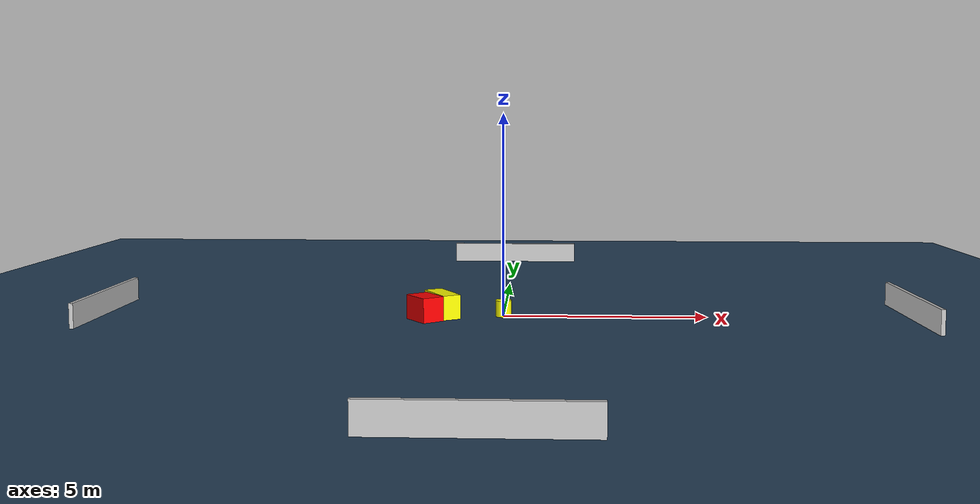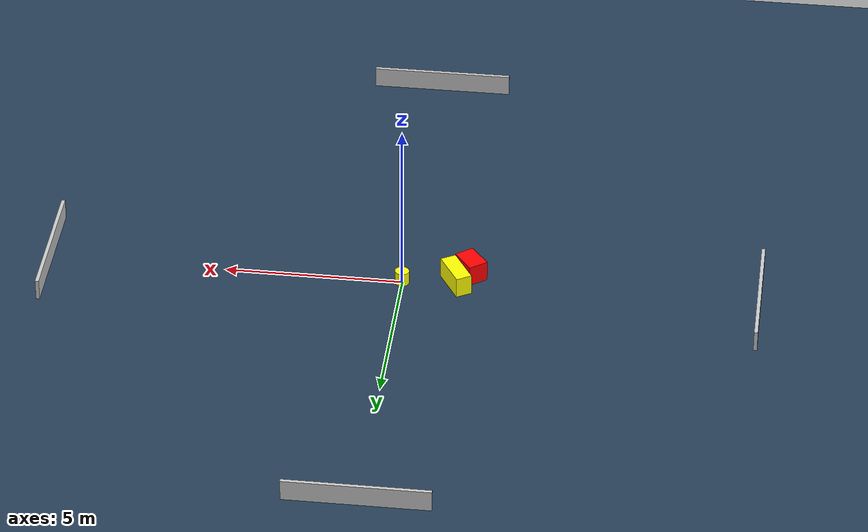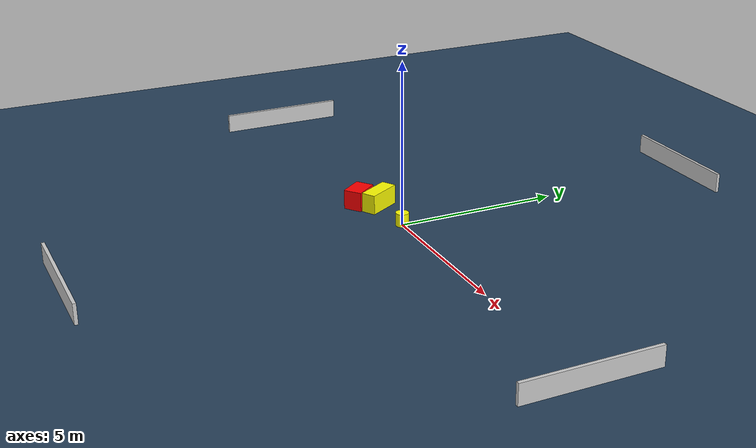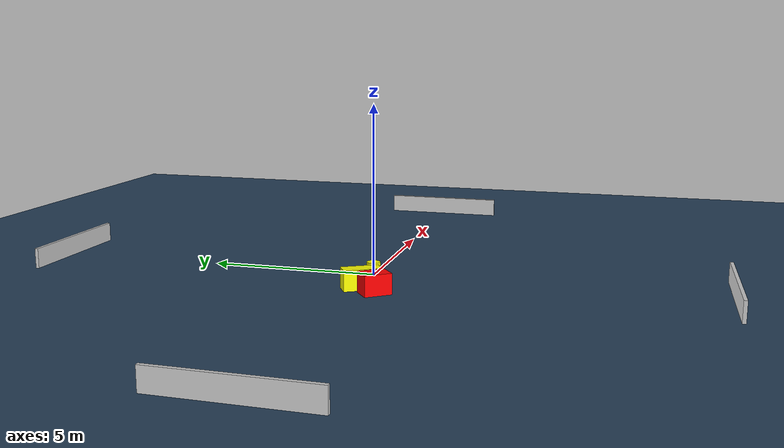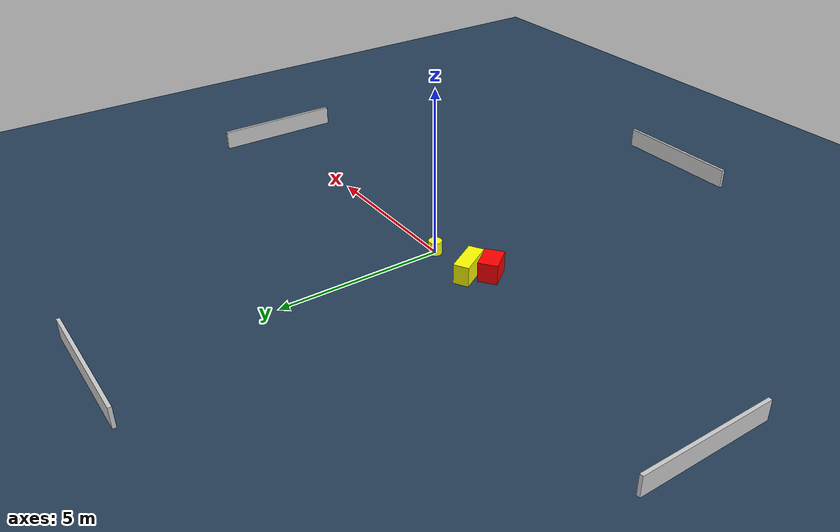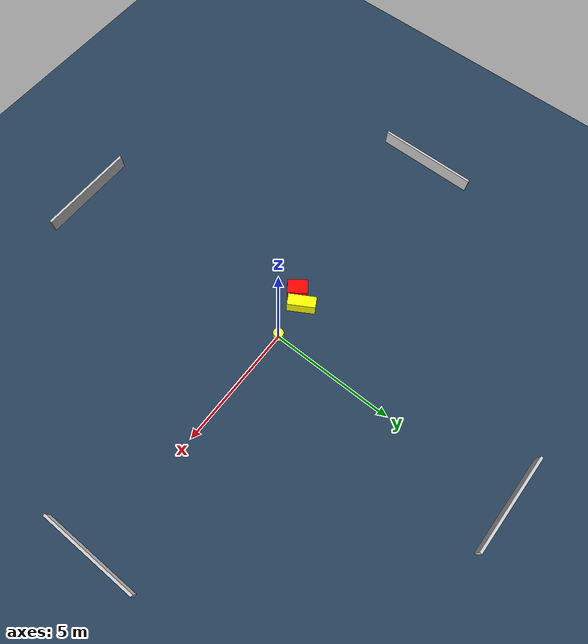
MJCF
<?xml version="1.0" ?>
<mujoco model="generated_environment">
  <option timestep="0.01" integrator="RK4" cone="elliptic"/>
  <default>
    <geom density="1"/>
  </default>
  <asset>
    <texture builtin="gradient" height="3072" name="skybox" rgb1="0.3 0.5 0.7" rgb2="0 0 0" type="skybox" width="512"/>
    <texture builtin="checker" height="300" name="groundplane" rgb1="0.2 0.3 0.4" rgb2="0.1 0.2 0.3" type="2d" width="300"/>
    <material name="groundplane" reflectance="0.2" texrepeat="5 5" texture="groundplane"/>
  </asset>
  <worldbody>
    <light dir="0 0 -1" directional="true" pos="0 0 1.5"/>
    <geom condim="3" friction="0.5 0.005 0.001" material="groundplane" name="floor" pos="0 0 0" size="0 0 0.05" type="plane"/>
    <body name="walls">
      <geom name="wall_1" condim="4" pos="-10.0 0.0 0.3" rgba="0.800000011920929 0.800000011920929 0.800000011920929 1.0" size="0.05 2.0 0.3" type="box"/>
      <geom name="wall_2" condim="4" pos="10.0 0.0 0.3" rgba="0.800000011920929 0.800000011920929 0.800000011920929 1.0" size="0.05 2.0 0.3" type="box"/>
      <geom name="wall_3" condim="4" pos="0.0 -10.0 0.3" rgba="0.800000011920929 0.800000011920929 0.800000011920929 1.0" size="2.0 0.05 0.3" type="box"/>
      <geom name="wall_4" condim="4" pos="0.0 10.0 0.3" rgba="0.800000011920929 0.800000011920929 0.800000011920929 1.0" size="2.0 0.05 0.3" type="box"/>
    </body>
    <body name="robot">
      <joint name="joint_x" type="slide" pos="0 0 0" axis="1 0 0"/>
      <joint name="joint_y" type="slide" pos="0 0 0" axis="0 1 0"/>
      <geom name="robot" type="cylinder" pos="0.0 0.0 0.2" size="0.2 0.2 0.0" mass="5.0" friction="1.0 0.005 0.0001" condim="4" rgba="1.0 1.0 0.0 1.0"/>
    </body>
    <body name="obstacle_1_movable">
      <geom name="obstacle_1_movable" condim="4" pos="-1.5102113799147219 -0.06978428422148045 0.3" euler="0 0 210.29068296349675" friction="0.0 0.005 0.001" rgba="1.0 1.0 0.0 1.0" size="0.2282819336262817 0.5476801909610318 0.3" type="box" mass="0.1"/>
      <joint type="free"/>
    </body>
    <body name="obstacle_2_static">
      <geom name="obstacle_2_static" condim="4" pos="-1.88419454062633 -0.5622817752831755 0.3" euler="0 0 217.39020346042238" friction="0.0 0.005 0.001" rgba="1.0 0.0 0.0 1.0" size="0.28597035533295667 0.3975971379808493 0.3" type="box"/>
    </body>
  </worldbody>
  <actuator>
    <motor name="actuator_x" joint="joint_x" gear="1" ctrlrange="-1 1"/>
    <motor name="actuator_y" joint="joint_y" gear="1" ctrlrange="-1 1"/>
  </actuator>
</mujoco>
